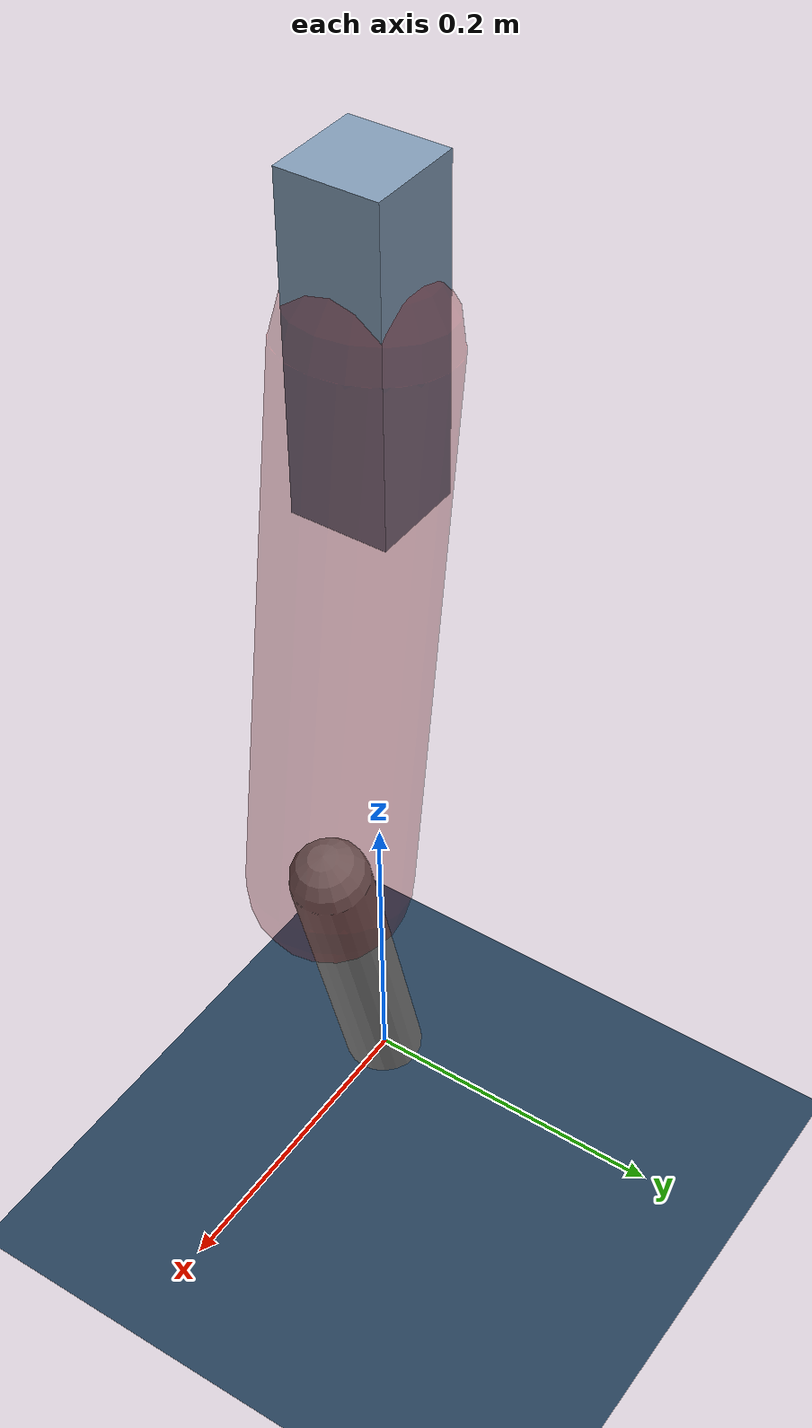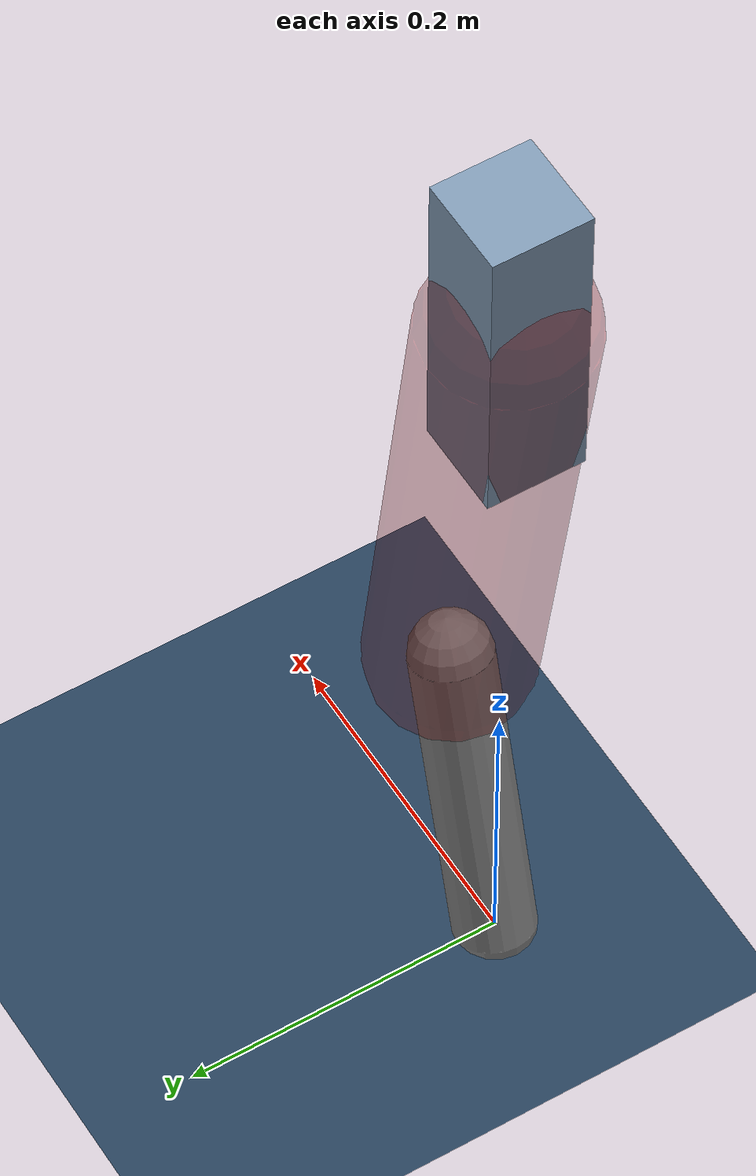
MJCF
<mujoco model="Hopper2D">
	<compiler inertiafromgeom="true" angle="radian" />
	<option timestep="0.001" integrator="implicit" cone="elliptic" solver="Newton" tolerance="1e-10" />

	<default>
		<geom contype="1" conaffinity="1" condim="3" friction="2 0.005 0.0001" solref="0.005 1" />
		<joint limited="true" damping="0.1" />
	</default>

	<asset>
		<texture name="skybox" type="skybox" builtin="gradient" rgb1=".4 .6 .8" rgb2="0 0 0" width="800" height="800" />
		<texture name="grid" type="2d" builtin="checker" rgb1=".1 .2 .3" rgb2=".2 .3 .4" width="300" height="300" mark="edge" markrgb=".2 .3 .4" />
		<material name="ground" texture="grid" texrepeat="1 1" texuniform="true" reflectance="0.1" />
		<material name="leg" rgba="0.5 0.6 0.7 1" />
	</asset>

	<worldbody>

		<geom name="floor" type="plane" size="5 5 0.25" material="ground" />

		<light directional="false" diffuse="0.8 0.8 0.8" specular="0.3 0.3 0.3" pos="0 0 2" dir="0 0 -1" />
		<light mode="targetbodycom" target="base" directional="false" diffuse="0.8 0.8 0.8" specular="0.3 0.3 0.3" pos="0 0 2" dir="0 0 -1" />

		<camera name="fixed" pos="0 -2 1" xyaxes="1 0 0 0 0 1" />
		<camera name="tracking" mode="trackcom" pos="0 -3 1" />

		<body name="root" pos="0 0 0.5506179351893311">
			<joint name="slide_x" type="slide" axis="1 0 0" range="-100 100" />
			<joint name="slide_z" type="slide" axis="0 0 1" range="0 10" />

			<body name="base" pos="0 0 0">
				<geom name="torso" type="box" size="0.03 0.03 0.1" mass="2.175" material="leg" />

				<body name="link1" pos="0 0 0" euler="0 1.4243032233016384 0">
					<joint type="hinge" axis="0 -1 0" pos="0 0 0" name="hinge1" limited="true" range="-3.14 3.14" stiffness="0" damping="0.1" />
					<geom name="thigh" type="capsule" fromto="0 0 0 0.3494972224875119 0 0" size="0.05" rgba="0.5 0 0 0.3" mass="1.1252922229650333" />

					<body name="link2" pos="0.3494972224875119 0 0" euler="0 0.39055257269545557 0">
						<joint type="hinge" axis="0 -1 0" pos="0 0 0" name="hinge2" limited="true" range="-3.14 3.14" stiffness="0" damping="0.1" />
						<geom name="shank" type="capsule" fromto="0 0 0 0.2111207127018192 0 0" size="0.025" mass="0.4102086414316373" />

					</body>
				</body>
			</body>
		</body>
	</worldbody>

	<actuator>
		<motor name="torque1" joint="hinge1" ctrlrange="-41.82806367300509 41.82806367300509" ctrllimited="true" gear="1" />
		<motor name="torque2" joint="hinge2" ctrlrange="-96.38127582637613 96.38127582637613" ctrllimited="true" gear="1" />
	</actuator>
</mujoco>
